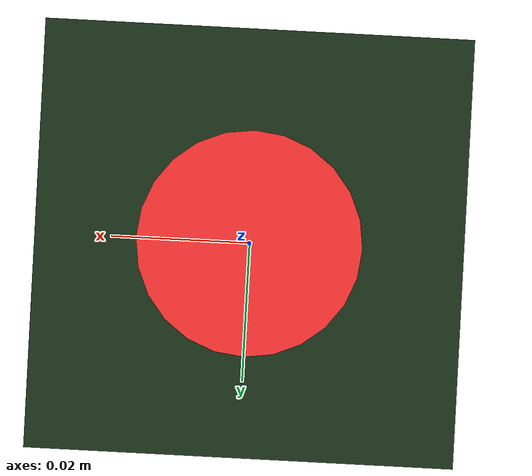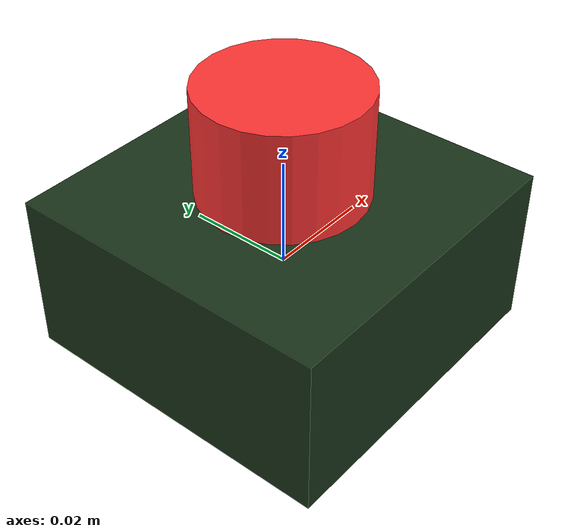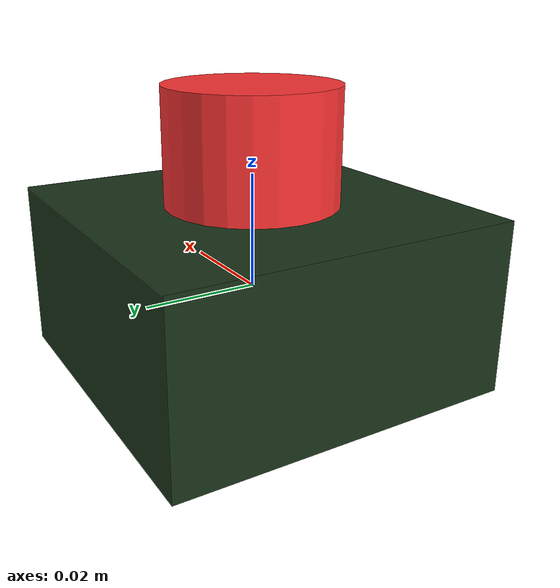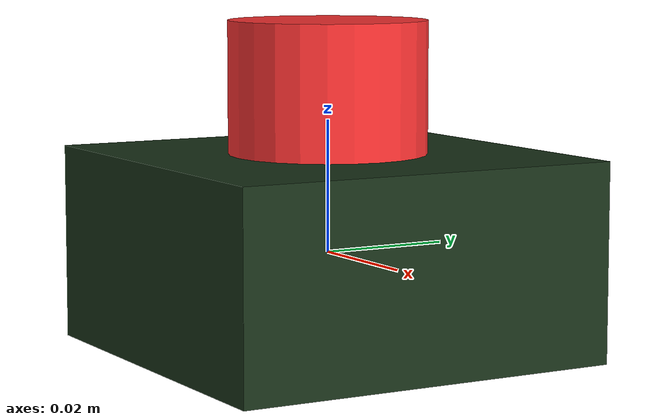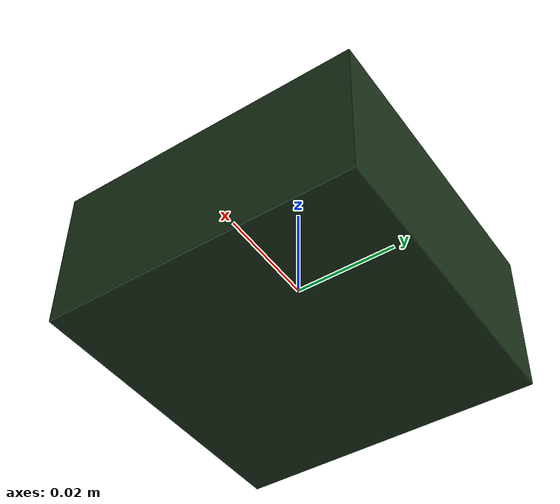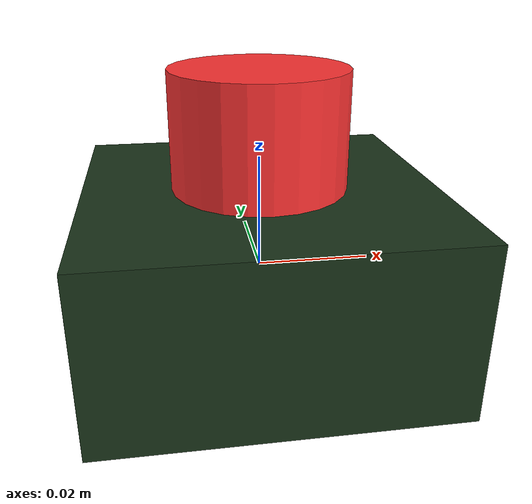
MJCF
<!-- Adapted from
https://github.com/real-stanford/scalingup/blob/master/scalingup/environment/mujoco/assets/custom/catapult/catapult.xml -->

<mujoco model="button">
    <compiler angle="radian" autolimits="true" />

    <default>
        <default class="visual">
            <geom contype="0" conaffinity="0" group="2" />
        </default>
        <default class="collision">
            <geom group="3" condim="3" friction="0.99" priority="1" />
        </default>
    </default>
    <asset>
        <material name="material_0" rgba="0.1 0.2 0.1 1" specular="0.0" shininess="0.0" />
        <material name="material_1" rgba="1.0 0.2 0.2 1" specular="0.0" shininess="0.0" />
        <material name="material_2" rgba="0.2 0.3 0.2 1" specular="0.0" shininess="0.0" />
    </asset>
    <worldbody>
        <body name="button">
            <geom type="box" size="0.03 0.03 0.015" pos="0.0 0.0 0" class="collision" />
            <geom type="box" size="0.03 0.03 0.015" pos="0.0 0.0 0" class="visual"
                material="material_0" />

            <body name="button_slider" pos="0.0 0.0 0.015">
                <joint name="button_slider" type="slide" range="0 0.02" axis="0 0 -1"
                    damping="0.01"
                    springref="0" stiffness="0.05" />
                <geom type="capsule" size="0.015 0.006" class="collision" mass="0.00001" />
                <geom type="cylinder" size="0.015 0.02" class="visual" mass="0.0"
                    material="material_1" />
                <camera name="button_side_view" pos="-0.08 0.08 0.08" euler="-0.8 -0.6 0" />
            </body>

        </body>
    </worldbody>
    <contact>
        <exclude body1="button" body2="button_slider" />
    </contact>
    <equality>
        <weld name="button_slider" body1="button_slider" relpose="0 5 0 0 0 0 0" torquescale="100" />
    </equality>
</mujoco>
